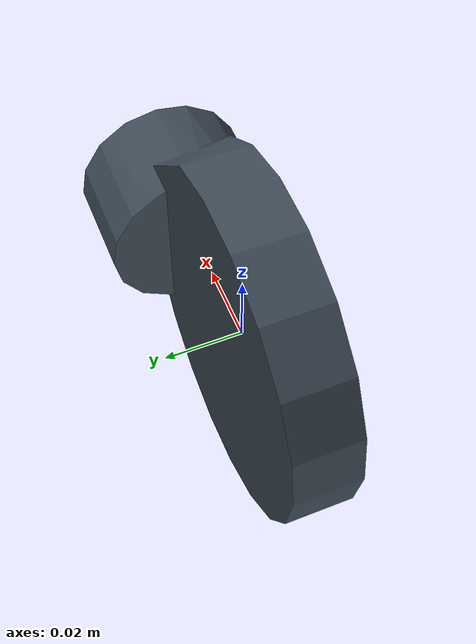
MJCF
<mujoco model="hr_hipx">
  <default>
    <default class="visual">
      <geom group="2" type="mesh" contype="0" conaffinity="0"/>
    </default>
    <default class="collision">
      <geom group="3" type="mesh"/>
    </default>
  </default>
  <asset>
    <material name="Material-7024油漆" specular="0.5" shininess="0.25" rgba="0.239216 0.290196 0.337255 1.000000"/>
    <mesh file="hr_hipx.obj"/>
  </asset>
  <worldbody>
    <body name="hr_hipx">
      <geom material="Material-7024油漆" mesh="hr_hipx" class="visual"/>
      <geom mesh="hr_hipx" class="collision"/>
    </body>
  </worldbody>
</mujoco>
